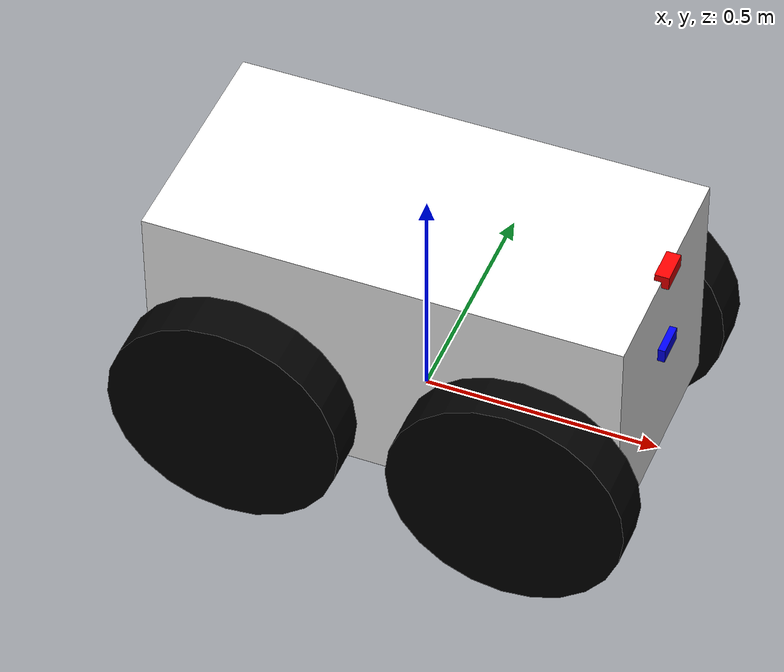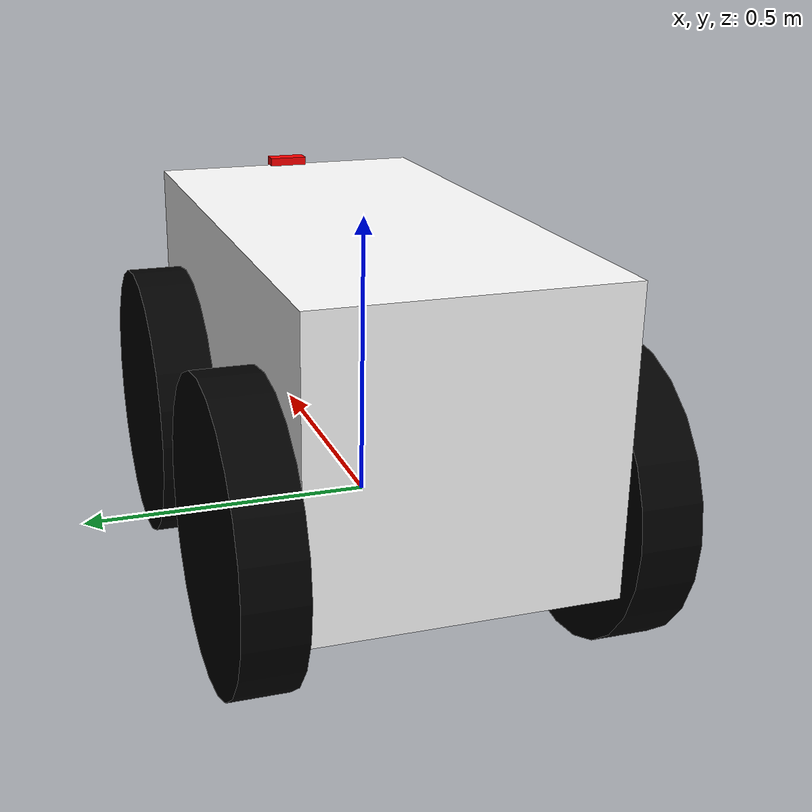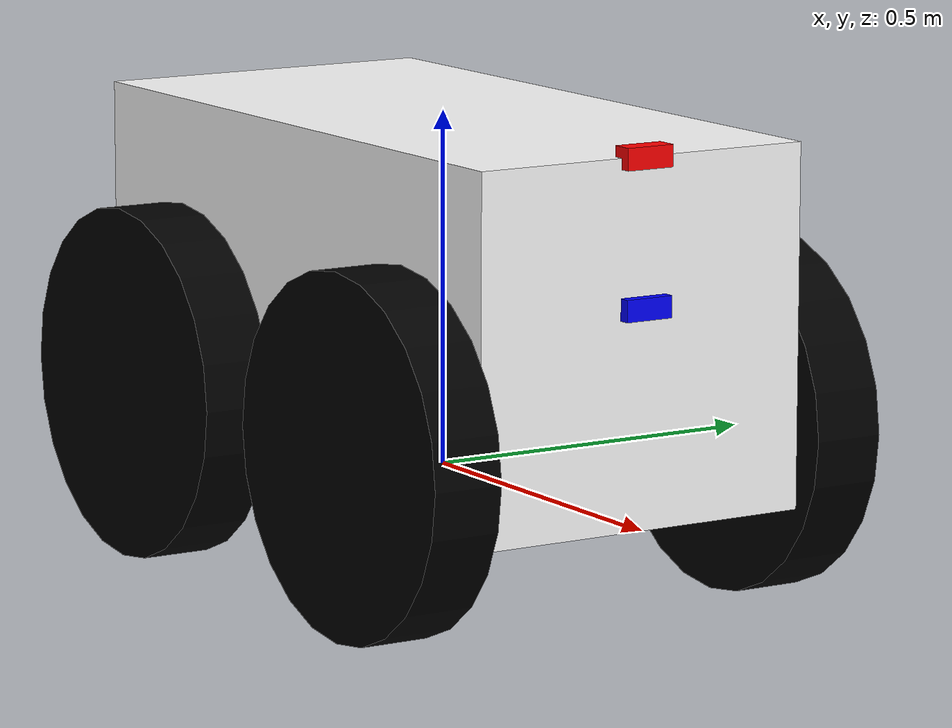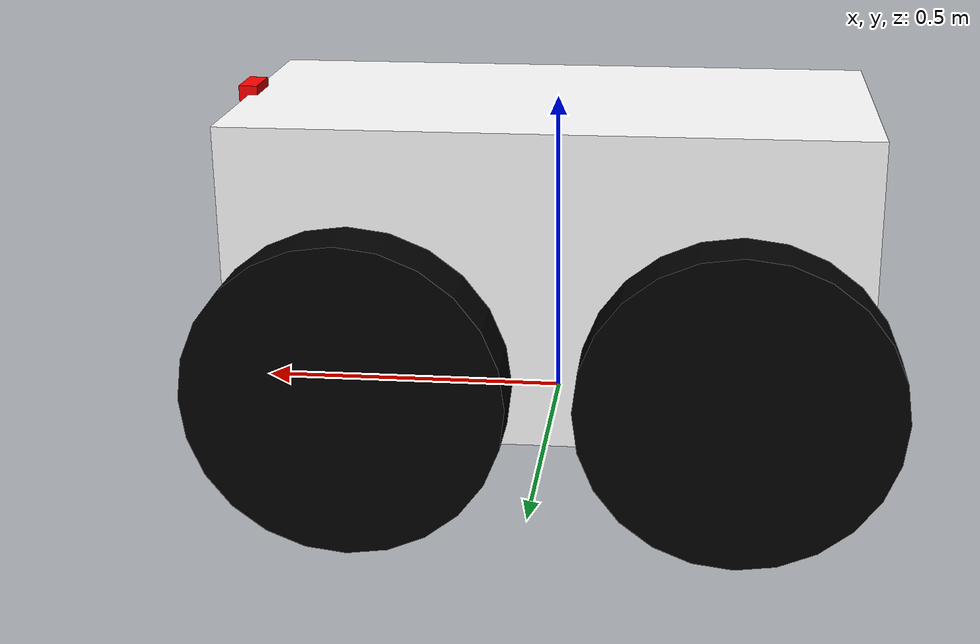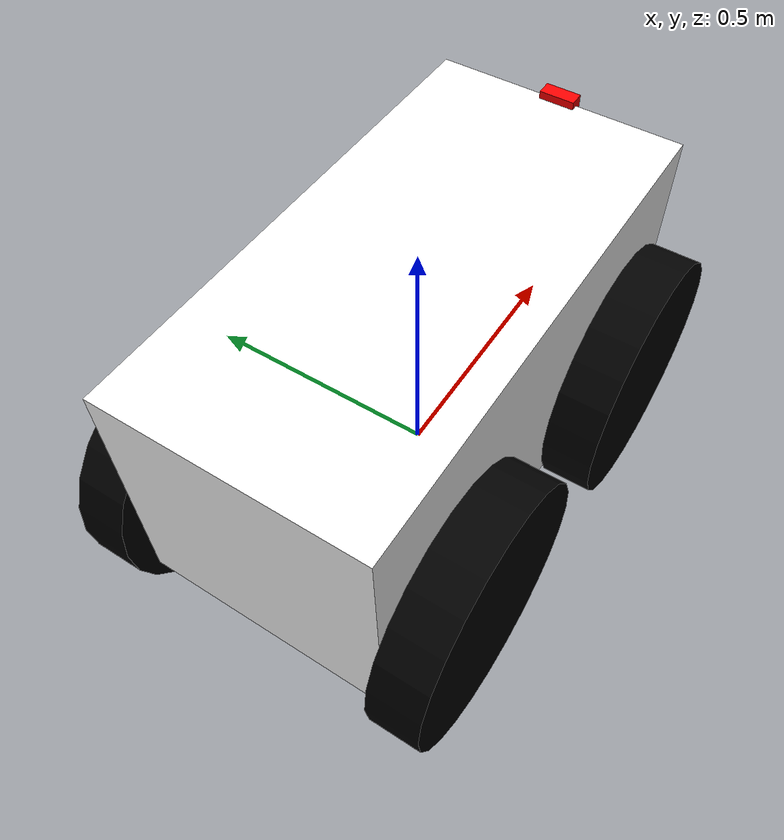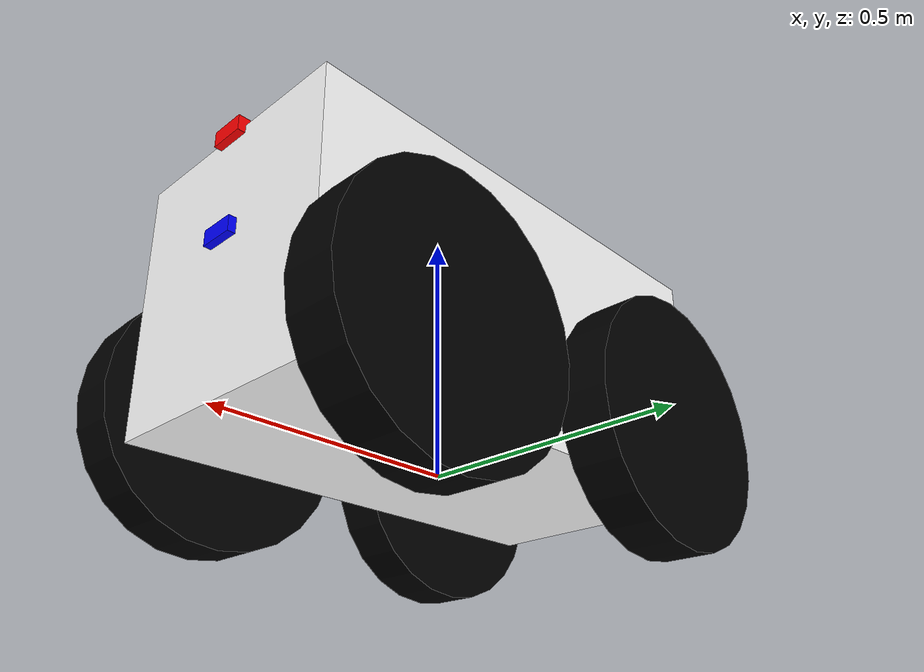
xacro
<?xml version="1.0"?>
<robot xmlns:xacro="http://www.ros.org/wiki/xacro">
    <xacro:include filename="robot_properties.xacro" />
    <xacro:include filename="component_macros.xacro" />
    <xacro:include filename="sensor_macros.xacro" />

    <material name="white">
        <color rgba="1 1 1 1" />
    </material>

    <material name="blue">
        <color rgba="0 0 1 1" />
    </material>

    <material name="black">
        <color rgba="0 0 0 1" />
    </material>

    <material name="green">
        <color rgba="0 1 0 1" />
    </material>

    <material name="red">
        <color rgba="1 0 0 1" />
    </material>

    <!-- BASE LINK OBJECT -->

    <link name="base_link">
    </link>

    <!-- CHASSIS OBJECT -->

    <joint name="chassis_joint" type="fixed">
        <parent link="base_link" />
        <child link="chassis" />
        <origin xyz="-${chassis_length/2} 0.0 0.0" />
    </joint>

    <xacro:chassis
        length="${chassis_length}"
        width="${chassis_width}"
        height="${chassis_height}"
        mass="${chassis_mass}"
    />

    <!-- WHEELS -->
    <!-- Front Left Wheel -->
    <xacro:wheel
        robot_pos="front_left"
        radius="${wheel_radius}"
        width="${wheel_width}"
        mass="${wheel_mass}"
    />

    <joint name="front_left_wheel_joint" type="continuous">
        <parent link="base_link" />
        <child link="front_left_wheel" />
        <axis xyz="0.0 0.0 1" />
        <origin
            xyz="${wheel_base/2} ${track_width/2} ${wheel_z_offset}"
            rpy="-${pi/2} 0.0 0.0"
        />
    </joint>

    <!-- Front Right Wheel -->
    <xacro:wheel
        robot_pos="front_right"
        radius="${wheel_radius}"
        width="${wheel_width}"
        mass="${wheel_mass}"
    />

    <joint name="front_right_wheel_joint" type="continuous">
        <parent link="base_link" />
        <child link="front_right_wheel" />
        <axis xyz="0.0 0.0 -1" />
        <origin
            xyz="${wheel_base/2} -${track_width/2} ${wheel_z_offset}"
            rpy="${pi/2} 0.0 0.0"
        />
    </joint>

    <!-- Back Left Wheel -->
    <xacro:wheel
        robot_pos="back_left"
        radius="${wheel_radius}"
        width="${wheel_width}"
        mass="${wheel_mass}"
    />

    <joint name="back_left_wheel_joint" type="continuous">
        <parent link="base_link" />
        <child link="back_left_wheel" />
        <axis xyz="0.0 0.0 1" />
        <origin
            xyz="-${wheel_base/2} ${track_width/2} ${wheel_z_offset}"
            rpy="-${pi/2} 0.0 0.0"
        />
    </joint>

    <!-- Back Right Wheel -->
    <xacro:wheel
        robot_pos="back_right"
        radius="${wheel_radius}"
        width="${wheel_width}"
        mass="${wheel_mass}"
    />

    <joint name="back_right_wheel_joint" type="continuous">
        <parent link="base_link" />
        <child link="back_right_wheel" />
        <axis xyz="0.0 0.0 -1" />
        <origin
            xyz="-${wheel_base/2} -${track_width/2} ${wheel_z_offset}"
            rpy="${pi/2} 0.0 0.0"
        />
    </joint>

    <!-- Front webcam -->
    <xacro:webcam
        name="front_webcam"
    />

    <joint name="front_webcam_joint" type="fixed">
        <parent link="chassis" />
        <child link="front_webcam_link" />
        <origin xyz="${webcam_x_offset} ${webcam_y_offset} ${webcam_z_offset}" rpy="0 0 0" />
    </joint>

    <!-- Front webcam -->
    <xacro:depth_cam
        name="front_depth_camera"
    />

    <joint name="front_depth_camera_joint" type="fixed">
        <parent link="chassis" />
        <child link="front_depth_camera_link" />
        <origin xyz="${webcam_x_offset} ${webcam_y_offset} ${webcam_z_offset - 0.2}" rpy="0 0 0" />
    </joint>
</robot>

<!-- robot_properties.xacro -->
<robot xmlns:xacro="http://ros.org/wiki/xacro">

    <xacro:property name="chassis_length" value="1.0" />
    <xacro:property name="chassis_width" value="0.5" />
    <xacro:property name="chassis_height" value="0.5" />
    <xacro:property name="chassis_mass" value="1.0" />

    <xacro:property name="wheel_radius" value="0.25" />
    <xacro:property name="wheel_width" value="0.1" />
    <xacro:property name="wheel_mass" value="1.0" />

    <xacro:property name="track_width" value="${chassis_width + wheel_width}" />
    <xacro:property name="wheel_base" value=".6" />
    <xacro:property name="wheel_z_offset" value="0.1" />

    <xacro:property name="webcam_x_offset" value="${chassis_length}" />
    <xacro:property name="webcam_y_offset" value="0.0" />
    <xacro:property name="webcam_z_offset" value="${chassis_height}" />

</robot>

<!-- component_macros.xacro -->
<robot xmlns:xacro="http://www.ros.org/wiki/xacro">

    <xacro:include filename="inertial_macros.xacro" />

    <!-- Macro for creating a wheel -->
    <xacro:macro name="wheel" params="robot_pos radius width mass">
        <link name="${robot_pos}_wheel">
            <visual>
                <geometry>
                    <cylinder radius="${radius}" length="${width}" />
                </geometry>
                <material name="black" />
            </visual>
            <collision>
                <geometry>
                    <sphere radius="${radius + 0.001}" />
                </geometry>
            </collision>
            <xacro:inertial_cylinder mass="${mass}" length="${width}" radius="${radius}">
                <origin xyz="0.0 0.0 0.0" rpy="0 0 0" />
            </xacro:inertial_cylinder>
        </link>
    </xacro:macro>

    <!-- Macro for creating the chassis -->
    <xacro:macro name="chassis" params="length width height mass">
        <link name="chassis">
            <visual>
                <origin xyz="${length/2} 0 ${height/2}" />
                <geometry>
                    <box size="${length} ${width} ${height}" />
                </geometry>
                <material name="white" />
            </visual>

            <collision>
                <origin xyz="${length/2} 0 ${height/2}" />
                <geometry>
                    <box size="${length} ${width} ${height}" />
                </geometry>
            </collision>

            <xacro:inertial_box mass="${mass}" x="${length}" y="${width}" z="${height}">
                <origin xyz="${length/2} 0 ${height/2}" rpy="0.0 0.0 0.0" />
            </xacro:inertial_box>
        </link>
    </xacro:macro>
</robot>

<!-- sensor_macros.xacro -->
<robot xmlns:xacro="http://www.ros.org/wiki/xacro">

    <!-- Macro for creating webcams -->
    <xacro:macro name="webcam" params="name">
        <link name="${name}_link">
            <visual>
                <geometry>
                    <box size="0.03 0.07 0.03" />
                </geometry>
                <material name="red" />
            </visual>
        </link>

        <link name="${name}_link_optical"></link>

        <joint name="${name}_optical_joint" type="fixed">
            <origin xyz="0 0 0" rpy="${-pi/2} 0 ${-pi/2}" />
            <parent link="${name}_link" />
            <child link="${name}_link_optical" />
        </joint>

        <gazebo reference="${name}_link">
            <sensor name="${name}" type="camera">
                <camera>
                    <camera_info_topic>${name}/camera_info</camera_info_topic>
                    <horizontal_fov>1.047</horizontal_fov>
                    <image>
                        <width>640</width>
                        <height>480</height>
                        <format>R8G8B8</format>
                    </image>
                    <clip>
                        <near>0.1</near>
                        <far>8</far>
                    </clip>
                </camera>
                <always_on>1</always_on>
                <update_rate>30</update_rate>
                <visualize>true</visualize>
                <topic>${name}/image_raw</topic>
                <gz_frame_id>${name}_link_optical</gz_frame_id>
            </sensor>
        </gazebo>
    </xacro:macro>

    <!-- Macro for creating depth cameras -->
    <xacro:macro name="depth_cam" params="name">
        <link name="${name}_link">
            <visual>
                <geometry>
                    <box size="0.03 0.07 0.03" />
                </geometry>
                <material name="blue" />
            </visual>
        </link>

        <link name="${name}_link_optical"></link>

        <joint name="${name}_optical_joint" type="fixed">
            <origin xyz="0 0 0" rpy="${-pi/2} 0 ${-pi/2}" />
            <parent link="${name}_link" />
            <child link="${name}_link_optical" />
        </joint>

        <gazebo reference="${name}_link">
            <sensor name="${name}" type="depth">
                <camera>
                    <camera_info_topic>${name}/camera_info</camera_info_topic>
                    <horizontal_fov>1.20</horizontal_fov>
                    <image>
                        <width>640</width>
                        <height>480</height>
                    </image>
                    <clip>
                        <near>0.1</near>
                        <far>8</far>
                    </clip>
                </camera>
                <always_on>1</always_on>
                <update_rate>30</update_rate>
                <visualize>true</visualize>
                <topic>${name}/image_raw</topic>
                <!-- Gazebo seems to output PointCloud data with the correct axis already -->
                <!-- X forward, Y left, Z up -->
                <!-- So we don't need to use the optical frame -->
                <gz_frame_id>${name}_link</gz_frame_id>
            </sensor>
        </gazebo>
    </xacro:macro>
</robot>
